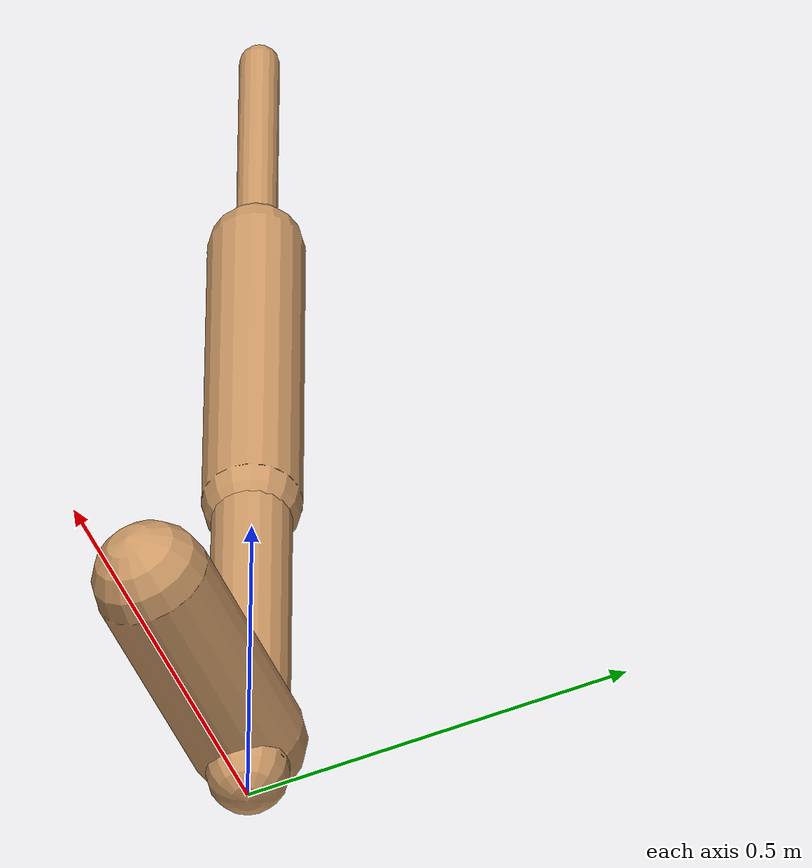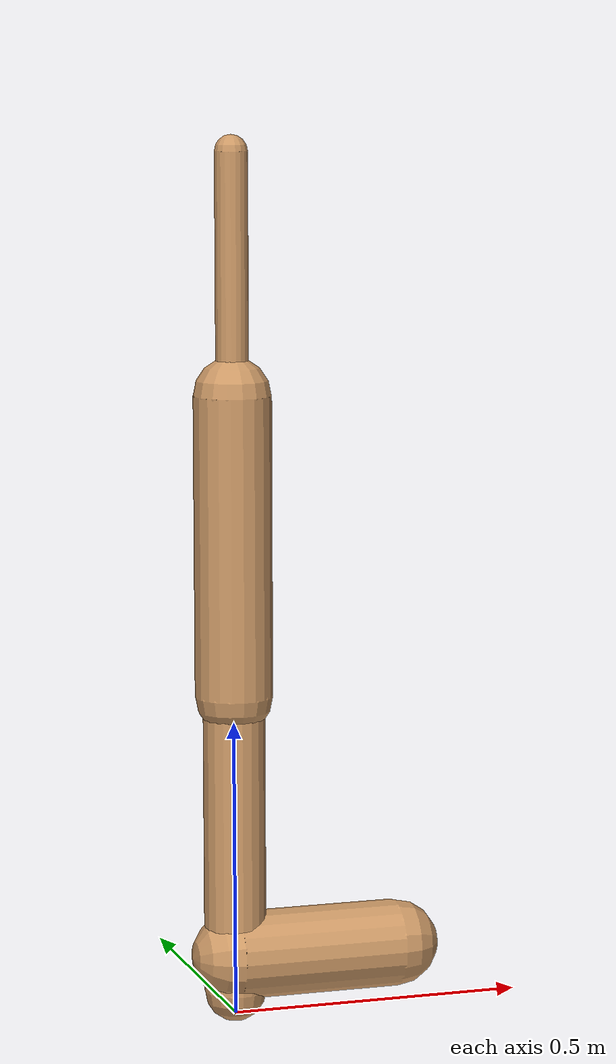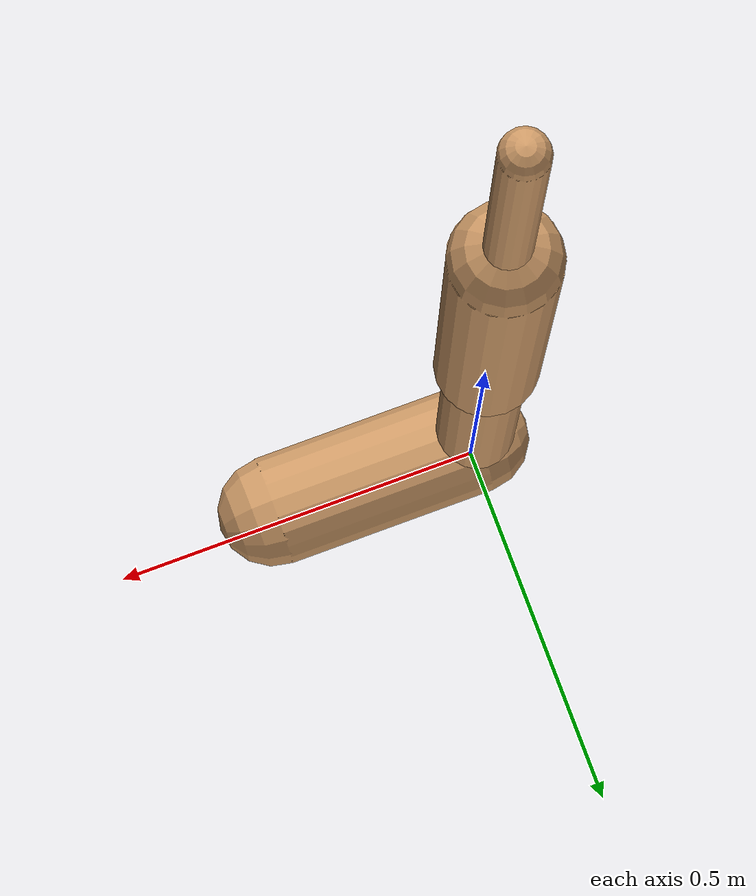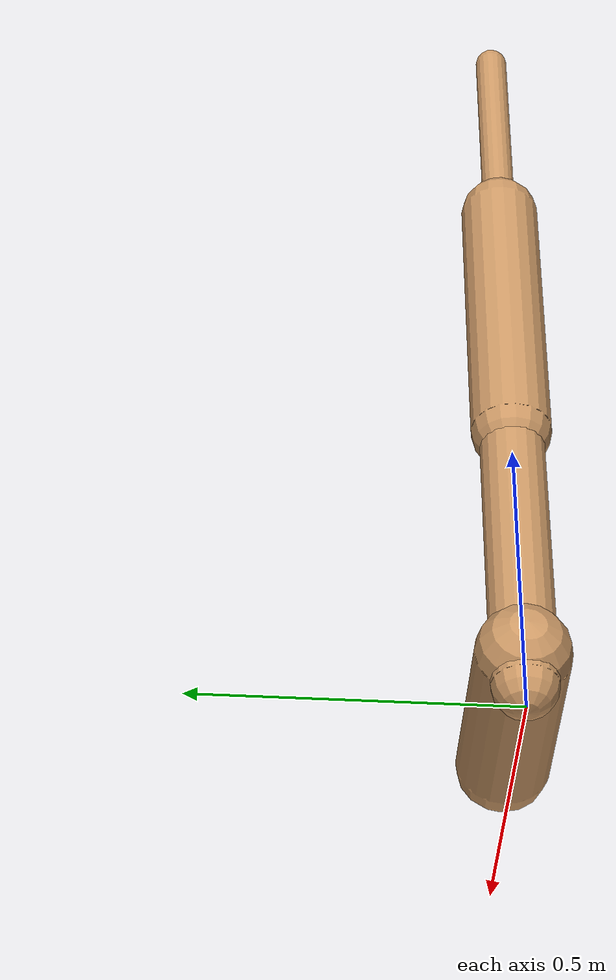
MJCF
<mujoco model="walker2d">
  <compiler angle="degree" coordinate="global" inertiafromgeom="true" />
  <default>
    <joint armature="0.01" damping=".1" limited="true" />
    <geom conaffinity="0" condim="3" contype="1" density="1000" friction="0.8 .1 .1" rgba="0.8 0.6 .4 1" />
  </default>
  <option integrator="RK4" timestep="0.002" />
  <worldbody>

    <body name="torso" pos="0 0 0.11455823464197327">
      <joint armature="0" axis="1 0 0" damping="0" limited="false" name="ignorex" pos="0 0 0" stiffness="0" type="slide" />
      <joint armature="0" axis="0 0 1" damping="0" limited="false" name="ignorez" pos="0 0 0" ref="1.25" stiffness="0" type="slide" />
      <joint armature="0" axis="0 1 0" damping="0" limited="false" name="ignorey" pos="0 0 0" stiffness="0" type="hinge" />
      <geom fromto="0 0 1.45 0 0 1.05" name="torso_geom" size="0.027456904019205287" type="capsule" />
      <body name="thigh">
        <joint axis="0 -1 0" name="thigh_joint" pos="0 0 1.05" range="-150 0" type="hinge" />
        <geom fromto="0.0 0.0 1.05 0.0 0.0 0.5457355730643284" name="thigh_geom" size="0.06501539099375385" type="capsule" />
        <body name="leg" pos="0.0 0.0 -0.05426442693567157">
          <joint axis="0 -1 0" name="leg_joint" pos="0 0 0.6" range="-150 0" type="hinge" />
          <geom fromto="0.0 0.0 0.6 0.0 0.0 0.03970619229369829" name="leg_geom" size="0.052012312795003075" type="capsule" />
          <body name="foot" pos="0.0 0.0 -0.060293807706301716">
            <joint axis="0 -1 0" name="foot_joint" pos="0 0 0.1" range="-45 45" type="hinge" />
            <geom fromto="-0.0 0.0 0.1 0.2831353270149958 0.0 0.1" name="foot_geom" size="0.07404871918776766" type="capsule" />
          </body>
        </body>
      </body>

      <body name="thigh_left">
        <joint axis="0 -1 0" name="thigh_left_joint" pos="0 0 1.05" range="-150 0" type="hinge" />
        <geom fromto="0.0 0.0 1.05 0.0 0.0 0.5457355730643284" name="thigh_left_geom" rgba=".7 .3 .6 1" size="0.06501539099375385" type="capsule" />
        <body name="leg_left" pos="0.0 0.0 -0.05426442693567157">
          <joint axis="0 -1 0" name="leg_left_joint" pos="0 0 0.6" range="-150 0" type="hinge" />
          <geom fromto="0.0 0.0 0.6 0.0 0.0 0.03970619229369829" name="leg_left_geom" rgba=".7 .3 .6 1" size="0.052012312795003075" type="capsule" />
          <body name="foot_left" pos="0.0 0.0 -0.060293807706301716">
            <joint axis="0 -1 0" name="foot_left_joint" pos="0 0 0.1" range="-45 45" type="hinge" />
            <geom fromto="-0.0 0.0 0.1 0.2831353270149958 0.0 0.1" name="foot_left_geom" rgba=".7 .3 .6 1" size="0.07404871918776766" type="capsule" />
          </body>
        </body>
      </body>
    </body>
  </worldbody>
  <actuator>

    <motor ctrllimited="true" ctrlrange="-1.0 1.0" gear="100" joint="thigh_joint" />
    <motor ctrllimited="true" ctrlrange="-1.0 1.0" gear="100" joint="leg_joint" />
    <motor ctrllimited="true" ctrlrange="-1.0 1.0" gear="100" joint="foot_joint" />
    <motor ctrllimited="true" ctrlrange="-1.0 1.0" gear="100" joint="thigh_left_joint" />
    <motor ctrllimited="true" ctrlrange="-1.0 1.0" gear="100" joint="leg_left_joint" />
    <motor ctrllimited="true" ctrlrange="-1.0 1.0" gear="100" joint="foot_left_joint" />

  </actuator>
</mujoco>
